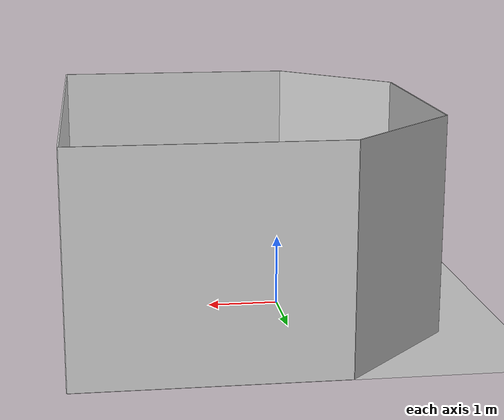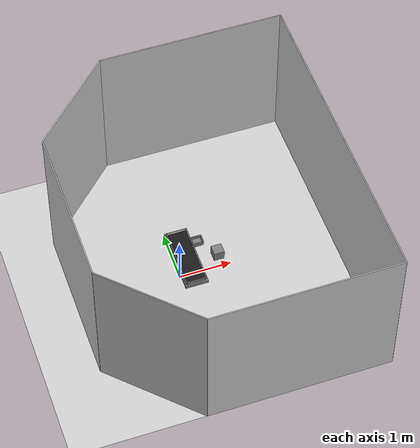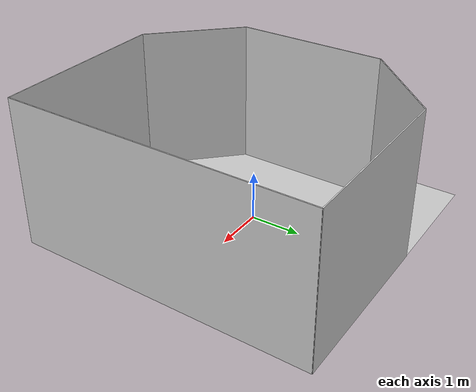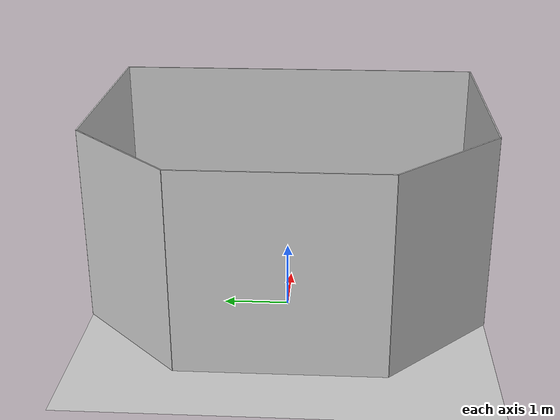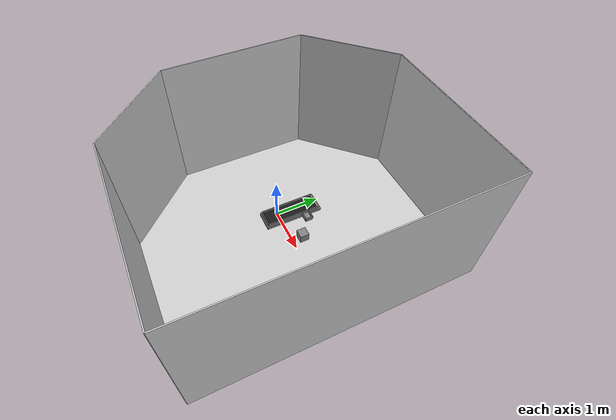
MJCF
<mujoco model="conveyor_pick_place">
  <option timestep="0.001" integrator="implicitfast" cone="elliptic" impratio="10"
    noslip_iterations="1" />

  <visual>
    <headlight diffuse="0.3 0.3 0.3" ambient="0.2 0.2 0.2" specular="0 0 0" />
    <!-- Offscreen buffer large enough for the teleoperation viewer. -->
    <global offwidth="1280" offheight="960" />
  </visual>

  <asset>
    <texture builtin="gradient" height="256" rgb1=".9 .9 1." rgb2=".2 .3 .4" type="skybox" width="256" />
    <texture file="../textures/light-gray-floor-tile.png" type="2d" name="texplane" />
    <material name="floorplane" reflectance="0.01" shininess="0.0" specular="0.0" texrepeat="2 2" texture="texplane" texuniform="true" />

    <texture file="../textures/steel-brushed.png" type="cube" name="tex-steel-brushed" />
    <material name="steel_mat" reflectance="0.8" shininess="0.8" texrepeat="1 1" texture="tex-steel-brushed" />

    <texture file="../textures/light-gray-plaster.png" type="2d" name="tex-light-gray-plaster" />
    <material name="walls_mat" reflectance="0.0" shininess="0.1" specular="0.1" texrepeat="3 3" texture="tex-light-gray-plaster" texuniform="true" />

    <texture file="../textures/light-wood.png" type="2d" name="tex-light-wood" />
    <texture file="../textures/dark-wood.png" type="2d" name="tex-dark-wood" />
    <material name="light-wood" reflectance="0" texrepeat="15 15" texture="tex-light-wood" texuniform="true" />
    <material name="dark-wood" reflectance="0" texrepeat="5 5" texture="tex-dark-wood" texuniform="true" />

    <material name="belt_mat" rgba="0.10 0.10 0.10 1" reflectance="0.05" shininess="0.0" specular="0.0" />
  </asset>

  <worldbody>
    <light name="spotlight_1" mode="targetbody" pos="0 0 3" dir="0 0 -1" cutoff="50.0" exponent="20" diffuse="0.2 0.2 0.2" />

    <geom condim="3" group="1" material="floorplane" name="floor" pos="0 0 0" size="3 3 .125" type="plane" />

    <geom pos="-1.25 2.25 1.5" quat="0.6532815 0.6532815 0.2705981 0.2705981" size="1.06 1.5 0.01" type="box" conaffinity="0" contype="0" group="1" name="wall_leftcorner_visual" material="walls_mat" />
    <geom pos="-1.25 -2.25 1.5" quat="0.6532815 0.6532815 -0.2705981 -0.2705981" size="1.06 1.5 0.01" type="box" conaffinity="0" contype="0" group="1" name="wall_rightcorner_visual" material="walls_mat" />
    <geom pos="1.25 3 1.5" quat="0.7071 0.7071 0 0" size="1.75 1.5 0.01" type="box" conaffinity="0" contype="0" group="1" name="wall_left_visual" material="walls_mat" />
    <geom pos="1.25 -3 1.5" quat="0.7071 -0.7071 0 0" size="1.75 1.5 0.01" type="box" conaffinity="0" contype="0" group="1" name="wall_right_visual" material="walls_mat" />
    <geom pos="-2 0 1.5" quat="0.5 0.5 0.5 0.5" size="1.5 1.5 0.01" type="box" conaffinity="0" contype="0" group="1" name="wall_rear_visual" material="walls_mat" />
    <geom pos="3 0 1.5" quat="0.5 0.5 -0.5 -0.5" size="3 1.5 0.01" type="box" conaffinity="0" contype="0" group="1" name="wall_front_visual" material="walls_mat" />

    <body name="robot_support" pos="0.82 0.24 0.0">
      <geom name="robot_support_collision" pos="0 0 0.1" size="0.1 0.1 0.1" type="box" group="0" friction="1 0.005 0.0001" />
      <geom pos="0 0 0.1" material="floorplane" size="0.1 0.1 0.1" type="box" conaffinity="0" contype="0" group="1" />
    </body>

    <body name="conveyor_frame" pos="0.20 0.24 0.22">
      <geom name="conveyor_table_collision" pos="0 0 -0.03" size="0.22 0.64 0.03" type="box" group="0" friction="1 0.005 0.0001" />
      <geom pos="0 0 -0.03" size="0.22 0.64 0.03" type="box" conaffinity="0" contype="0" group="1" material="dark-wood" />

      <geom name="conveyor_belt_surface" pos="0 0 0" size="0.18 0.60 0.01" type="box" group="0" priority="2" friction="0 0.005 0.0001" material="belt_mat" />

      <geom name="conveyor_rail_plus_x" pos="0.19 0 0.03" size="0.01 0.60 0.03" type="box" group="0" friction="1 0.005 0.0001" />
      <geom pos="0.19 0 0.03" size="0.01 0.60 0.03" type="box" conaffinity="0" contype="0" group="1" material="steel_mat" />
      <geom name="conveyor_rail_minus_x" pos="-0.19 0 0.03" size="0.01 0.60 0.03" type="box" group="0" friction="1 0.005 0.0001" />
      <geom pos="-0.19 0 0.03" size="0.01 0.60 0.03" type="box" conaffinity="0" contype="0" group="1" material="steel_mat" />

      <geom name="conveyor_back_stop" pos="0 -0.605 0.03" size="0.18 0.01 0.03" type="box" group="0" friction="1 0.005 0.0001" />
      <geom pos="0 -0.605 0.03" size="0.18 0.01 0.03" type="box" conaffinity="0" contype="0" group="1" material="steel_mat" />

      <geom pos="0 -0.595 0.015" quat="0.7071 0 0.7071 0" size="0.015 0.19" type="cylinder" conaffinity="0" contype="0" group="1" material="steel_mat" />
      <geom pos="0 0.595 0.015" quat="0.7071 0 0.7071 0" size="0.015 0.19" type="cylinder" conaffinity="0" contype="0" group="1" material="steel_mat" />
    </body>

    <body name="target_bin" pos="0.50 0.50 0.22">
      <geom name="target_bin_floor" pos="0 0 0" size="0.10 0.08 0.02" type="box" group="0" friction="1 0.005 0.0001" />
      <geom pos="0 0 0" size="0.10 0.08 0.02" type="box" conaffinity="0" contype="0" group="1" material="light-wood" />

      <geom name="target_bin_wall_plus_y" pos="0 0.08 0.04" size="0.10 0.01 0.04" type="box" group="0" friction="1 0.005 0.0001" />
      <geom pos="0 0.08 0.04" size="0.10 0.01 0.04" type="box" conaffinity="0" contype="0" group="1" material="light-wood" />
      <geom name="target_bin_wall_minus_y" pos="0 -0.08 0.04" size="0.10 0.01 0.04" type="box" group="0" friction="1 0.005 0.0001" />
      <geom pos="0 -0.08 0.04" size="0.10 0.01 0.04" type="box" conaffinity="0" contype="0" group="1" material="light-wood" />
      <geom name="target_bin_wall_plus_x" pos="0.10 0 0.04" size="0.01 0.08 0.04" type="box" group="0" friction="1 0.005 0.0001" />
      <geom pos="0.10 0 0.04" size="0.01 0.08 0.04" type="box" conaffinity="0" contype="0" group="1" material="light-wood" />
      <geom name="target_bin_wall_minus_x" pos="-0.10 0 0.04" size="0.01 0.08 0.04" type="box" group="0" friction="1 0.005 0.0001" />
      <geom pos="-0.10 0 0.04" size="0.01 0.08 0.04" type="box" conaffinity="0" contype="0" group="1" material="light-wood" />
    </body>

    <light diffuse="1.0 1.0 1.0" pos="0 0 3" castshadow="false" />
    <light diffuse="1.0 1.0 1.0" pos="3 0 3" castshadow="false" />
    <light diffuse="1.0 1.0 1.0" pos="-3 0 3" castshadow="false" />
    <light diffuse="1.0 1.0 1.0" pos="0 3 3" castshadow="false" />
    <light diffuse="1.0 1.0 1.0" pos="0 -3 3" castshadow="false" />

    <camera mode="fixed" name="frontview" pos="1.6 0 1.45" quat="0.56 0.43 0.43 0.56" />
    <camera mode="fixed" name="birdview" pos="0.2 0 1.5" quat="0.7071 0 0 0.7071" />
    <camera mode="fixed" name="third_person_camera" pos="-0.185 1.342 1.116" xyaxes="-0.890 -0.456 -0.000 0.241 -0.470 0.849" />
  </worldbody>
</mujoco>
